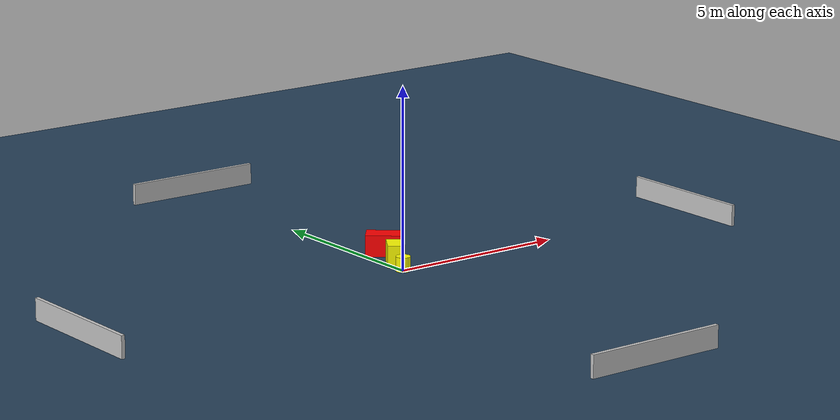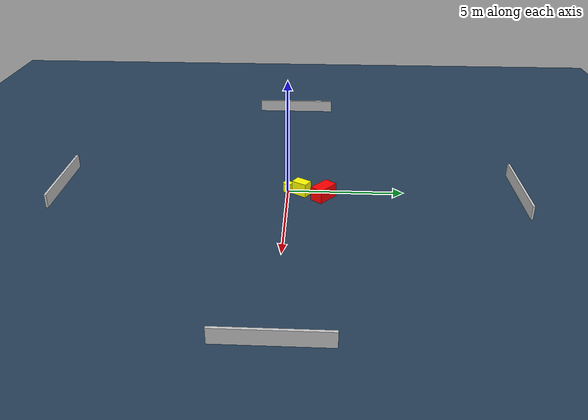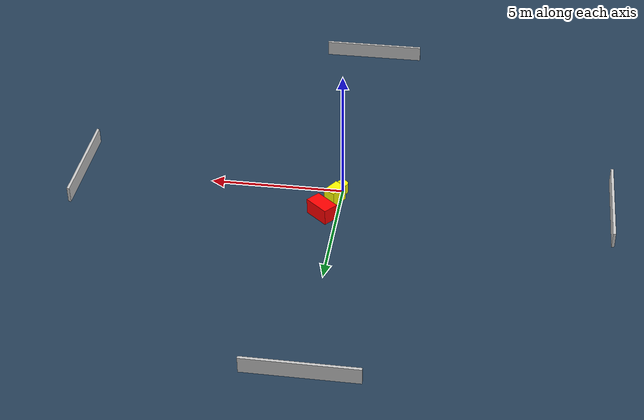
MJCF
<?xml version="1.0" ?>
<mujoco model="generated_environment">
  <option timestep="0.01" integrator="RK4" cone="elliptic"/>
  <default>
    <geom density="1"/>
  </default>
  <asset>
    <texture builtin="gradient" height="3072" name="skybox" rgb1="0.3 0.5 0.7" rgb2="0 0 0" type="skybox" width="512"/>
    <texture builtin="checker" height="300" name="groundplane" rgb1="0.2 0.3 0.4" rgb2="0.1 0.2 0.3" type="2d" width="300"/>
    <material name="groundplane" reflectance="0.2" texrepeat="5 5" texture="groundplane"/>
  </asset>
  <worldbody>
    <light dir="0 0 -1" directional="true" pos="0 0 1.5"/>
    <geom condim="3" friction="0.5 0.005 0.001" material="groundplane" name="floor" pos="0 0 0" size="0 0 0.05" type="plane"/>
    <body name="walls">
      <geom name="wall_1" condim="4" pos="-10.0 0.0 0.3" rgba="0.800000011920929 0.800000011920929 0.800000011920929 1.0" size="0.05 2.0 0.3" type="box"/>
      <geom name="wall_2" condim="4" pos="10.0 0.0 0.3" rgba="0.800000011920929 0.800000011920929 0.800000011920929 1.0" size="0.05 2.0 0.3" type="box"/>
      <geom name="wall_3" condim="4" pos="0.0 -10.0 0.3" rgba="0.800000011920929 0.800000011920929 0.800000011920929 1.0" size="2.0 0.05 0.3" type="box"/>
      <geom name="wall_4" condim="4" pos="0.0 10.0 0.3" rgba="0.800000011920929 0.800000011920929 0.800000011920929 1.0" size="2.0 0.05 0.3" type="box"/>
    </body>
    <body name="robot">
      <joint name="joint_x" type="slide" pos="0 0 0" axis="1 0 0"/>
      <joint name="joint_y" type="slide" pos="0 0 0" axis="0 1 0"/>
      <geom name="robot" type="cylinder" pos="0.0 0.0 0.2" size="0.2 0.2 0.0" mass="5.0" friction="1.0 0.005 0.0001" condim="4" rgba="1.0 1.0 0.0 1.0"/>
    </body>
    <body name="obstacle_1_movable">
      <geom name="obstacle_1_movable" condim="4" pos="0.2117681384421832 0.6080214949086689 0.3" euler="0 0 147.49594377121147" friction="0.0 0.005 0.001" rgba="1.0 1.0 0.0 1.0" size="0.23077745663107402 0.3425731794424373 0.3" type="box" mass="0.1"/>
      <joint type="free"/>
    </body>
    <body name="obstacle_2_static">
      <geom name="obstacle_2_static" condim="4" pos="0.558114897041414 1.5585079863366367 0.3" euler="0 0 139.7143552267046" friction="0.0 0.005 0.001" rgba="1.0 0.0 0.0 1.0" size="0.5006157070593913 0.2904267207783467 0.3" type="box"/>
    </body>
  </worldbody>
  <actuator>
    <motor name="actuator_x" joint="joint_x" gear="1" ctrlrange="-1 1"/>
    <motor name="actuator_y" joint="joint_y" gear="1" ctrlrange="-1 1"/>
  </actuator>
</mujoco>
